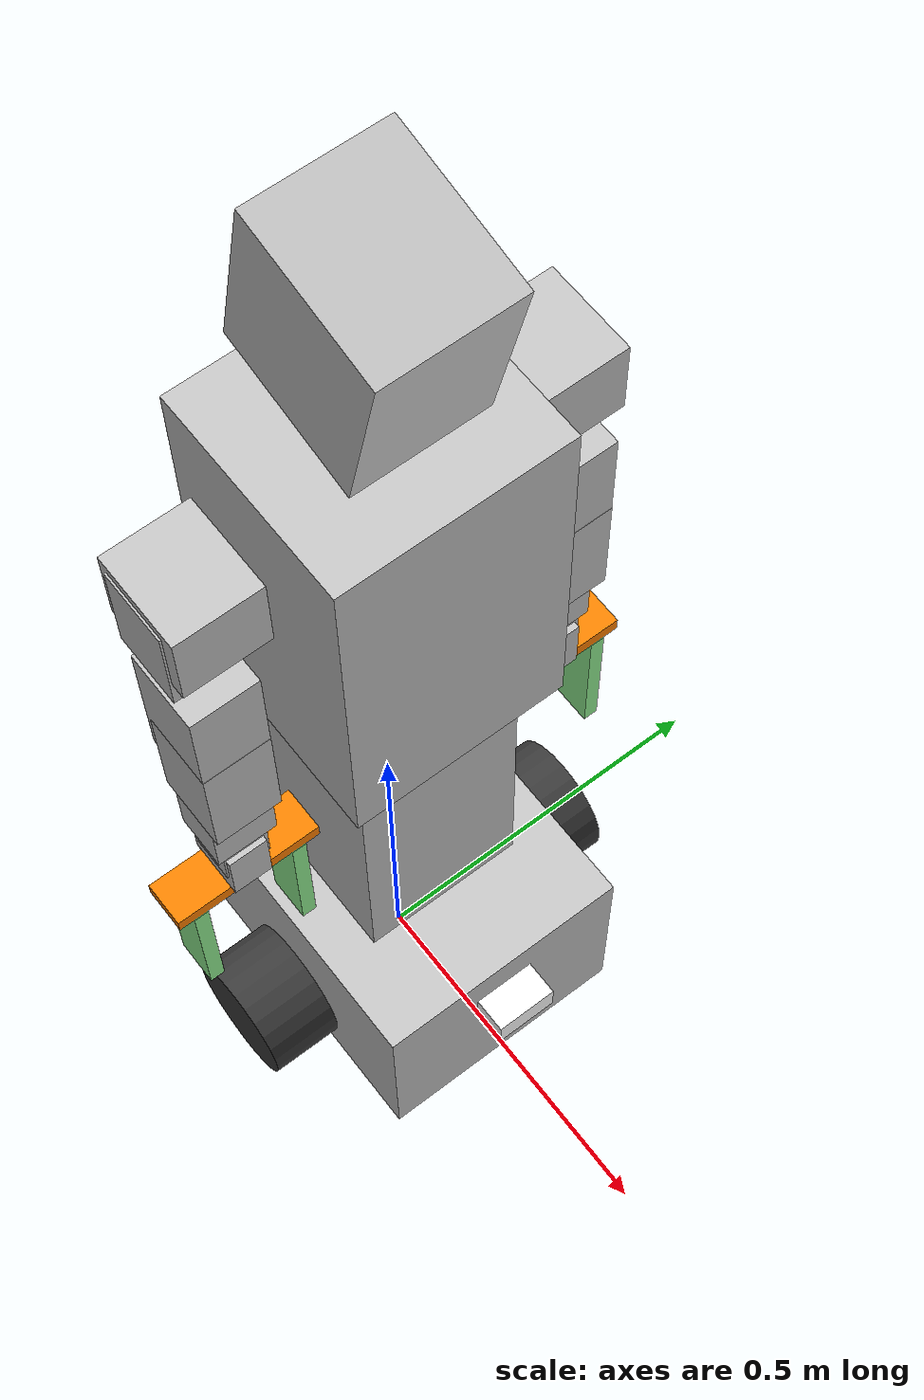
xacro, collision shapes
<?xml version="1.0"?>
<robot xmlns:xacro="http://www.ros.org/wiki/xacro" name="zhishu_robot">
    <xacro:arg name="initial_positions_file" default="initial_positions.yaml" />
    <xacro:arg name="use_gazebo" default="false" />
    <xacro:arg name="use_fake_hardware" default="true" />
    <xacro:arg name="left_arm_use_fake_hardware" default="$(arg use_fake_hardware)" />
    <xacro:arg name="right_arm_use_fake_hardware" default="$(arg use_fake_hardware)" />
    <xacro:arg name="torso_head_use_fake_hardware" default="$(arg use_fake_hardware)" />
    <xacro:arg name="enable_left_arm_hardware" default="true" />
    <xacro:arg name="enable_right_arm_hardware" default="true" />
    <xacro:arg name="enable_torso_head_hardware" default="false" />
    <xacro:arg name="enable_motors_on_activate" default="true" />
    <xacro:arg name="torso_head_enable_motors_on_activate" default="false" />
    <xacro:arg name="pdo_diagnostics_auto_start" default="true" />
    <xacro:arg name="use_head_camera" default="false" />
    <xacro:arg name="hide_head_pitch_visual" default="false" />
    <xacro:arg name="handeye_target_enabled" default="false" />
    <xacro:arg name="bottle_grasp_sim_enabled" default="false" />
    <xacro:arg name="mobile_base_sim_enabled" default="false" />
    <!-- Simulation-only TCP pivot tool. False by default: never affects hardware bringup. -->
    <xacro:arg name="tcp_calibration_enabled" default="false" />
    <xacro:arg name="tcp_calibration_tool" default="probe" />
    <xacro:arg name="tcp_calibration_arm" default="both" />

    <!-- Import zhishu_robot urdf file -->
    <xacro:include filename="$(find zhishu_robot_description)/urdf/zhishu_robot.urdf.xacro" />

    <xacro:if value="$(arg tcp_calibration_enabled)">
        <!-- A world-fixed fixture requires a world-fixed robot base. Keep this
             anchor confined to TCP calibration simulation. -->
        <link name="world"/>
        <joint name="tcp_calibration_world_anchor" type="fixed">
            <parent link="world"/>
            <child link="base_footprint"/>
            <origin xyz="0 0 0" rpy="0 0 0"/>
        </joint>
        <xacro:include filename="$(find zhishu_robot_tcp_calibration)/urdf/tcp_probe.xacro" />
        <xacro:tcp_calibration_probes tool="$(arg tcp_calibration_tool)" arm="$(arg tcp_calibration_arm)" />
    </xacro:if>

    <!-- Import control_xacro -->
    <xacro:include filename="zhishu_robot.left_arm.ros2_control.xacro" />
    <xacro:include filename="zhishu_robot.right_arm.ros2_control.xacro" />
    <xacro:include filename="zhishu_robot.torso_head.ros2_control.xacro" />
    <xacro:include filename="zhishu_robot.gazebo.ros2_control.xacro" />

    <xacro:unless value="$(arg use_gazebo)">
        <xacro:if value="$(arg enable_left_arm_hardware)">
            <xacro:if value="$(arg enable_torso_head_hardware)">
                <xacro:zhishu_robot_left_arm_ros2_control
                    name="LeftArmSystem"
                    initial_positions_file="$(arg initial_positions_file)"
                    use_fake_hardware="$(arg left_arm_use_fake_hardware)"
                    enable_motors_on_activate="$(arg enable_motors_on_activate)"
                    pdo_diagnostics_auto_start="$(arg pdo_diagnostics_auto_start)"
                    include_torso_head_state_joints="false"
                    include_torso_head_ethercat_joints="true"/>
            </xacro:if>
            <xacro:unless value="$(arg enable_torso_head_hardware)">
                <xacro:zhishu_robot_left_arm_ros2_control
                    name="LeftArmSystem"
                    initial_positions_file="$(arg initial_positions_file)"
                    use_fake_hardware="$(arg left_arm_use_fake_hardware)"
                    enable_motors_on_activate="$(arg enable_motors_on_activate)"
                    pdo_diagnostics_auto_start="$(arg pdo_diagnostics_auto_start)"
                    include_torso_head_state_joints="true"
                    include_torso_head_ethercat_joints="false"/>
            </xacro:unless>
        </xacro:if>

        <xacro:if value="$(arg enable_right_arm_hardware)">
            <xacro:zhishu_robot_right_arm_ros2_control
                name="RightArmSystem"
                initial_positions_file="$(arg initial_positions_file)"
                use_fake_hardware="$(arg right_arm_use_fake_hardware)"
                enable_motors_on_activate="$(arg enable_motors_on_activate)"
                pdo_diagnostics_auto_start="$(arg pdo_diagnostics_auto_start)"/>
        </xacro:if>

        <xacro:if value="$(arg enable_torso_head_hardware)">
            <xacro:unless value="$(arg enable_left_arm_hardware)">
                <xacro:zhishu_robot_torso_head_ros2_control
                    name="TorsoHeadSystem"
                    initial_positions_file="$(arg initial_positions_file)"
                    use_fake_hardware="$(arg torso_head_use_fake_hardware)"
                    enable_motors_on_activate="$(arg torso_head_enable_motors_on_activate)"
                    pdo_diagnostics_auto_start="$(arg pdo_diagnostics_auto_start)"/>
            </xacro:unless>
        </xacro:if>
    </xacro:unless>

    <xacro:if value="$(arg use_gazebo)">
        <xacro:zhishu_robot_gazebo_ros2_control
            name="GazeboSystem"
            initial_positions_file="$(arg initial_positions_file)"/>
        <gazebo>
            <plugin filename="libgz_ros2_control-system.so" name="gz_ros2_control::GazeboSimROS2ControlPlugin">
                <parameters>$(find zhishu_robot_moveit_config)/config/ros2_controllers.yaml</parameters>
                <parameters>$(find zhishu_robot_moveit_config)/config/gazebo_controller_manager.yaml</parameters>
                <!-- Hold all joints at their configured initial positions while
                     the admittance launch loads and atomically activates controllers. -->
                <hold_joints>true</hold_joints>
                <!-- gz_ros2_control scales position error by update_rate;
                     a sub-unit gain damps discrete contact tracking. -->
                <position_proportional_gain>0.2</position_proportional_gain>
            </plugin>
            <xacro:if value="$(arg mobile_base_sim_enabled)">
                <plugin filename="gz-sim-pose-publisher-system" name="gz::sim::systems::PosePublisher">
                    <publish_model_pose>true</publish_model_pose>
                    <publish_link_pose>false</publish_link_pose>
                    <use_pose_vector_msg>false</use_pose_vector_msg>
                    <update_frequency>20</update_frequency>
                </plugin>
                <!-- Simulation-only mobile base. The wheel joints are state-only in
                     gz_ros2_control, so DiffDrive is the sole wheel command writer. -->
                <plugin filename="gz-sim-diff-drive-system" name="gz::sim::systems::DiffDrive">
                    <left_joint>left_wheel_joint</left_joint>
                    <right_joint>right_wheel_joint</right_joint>
                    <wheel_separation>0.35</wheel_separation>
                    <wheel_radius>0.0858</wheel_radius>
                    <topic>/cmd_vel</topic>
                    <odom_topic>/odom</odom_topic>
                    <tf_topic>/tf</tf_topic>
                    <frame_id>odom</frame_id>
                    <child_frame_id>base_footprint</child_frame_id>
                    <odom_publish_frequency>50</odom_publish_frequency>
                </plugin>
            </xacro:if>
            <xacro:if value="$(arg bottle_grasp_sim_enabled)">
                <!-- Contact determines closure timing; this simulation-only
                     joint prevents numerical slip during the lift. -->
                <plugin filename="gz-sim-detachable-joint-system"
                        name="gz::sim::systems::DetachableJoint">
                    <parent_link>gripper_base_link</parent_link>
                    <child_model>bottle</child_model>
                    <child_link>bottle_link</child_link>
                    <detach_topic>/bottle_grasp/detach</detach_topic>
                    <attach_topic>/bottle_grasp/attach</attach_topic>
                    <output_topic>/bottle_grasp/attached</output_topic>
                </plugin>
            </xacro:if>
        </gazebo>
        <xacro:if value="$(arg mobile_base_sim_enabled)">
            <gazebo reference="left_wheel_link"><mu1>8.0</mu1><mu2>8.0</mu2><kp>1000000.0</kp><kd>100.0</kd></gazebo>
            <gazebo reference="right_wheel_link"><mu1>8.0</mu1><mu2>8.0</mu2><kp>1000000.0</kp><kd>100.0</kd></gazebo>
            <!-- Candidate rubber pads: still require physical calibration. -->
            <gazebo reference="gripper_left_finger_link"><mu1>3.0</mu1><mu2>3.0</mu2></gazebo>
            <gazebo reference="gripper_right_finger_link"><mu1>3.0</mu1><mu2>3.0</mu2></gazebo>
            <gazebo reference="left_gripper_left_finger_link"><mu1>3.0</mu1><mu2>3.0</mu2></gazebo>
            <gazebo reference="left_gripper_right_finger_link"><mu1>3.0</mu1><mu2>3.0</mu2></gazebo>
            <xacro:macro name="pallet_contact_sensor" params="link">
                <gazebo reference="${link}">
                    <sensor name="${link}_contact" type="contact">
                        <always_on>true</always_on><update_rate>50</update_rate>
                        <topic>/pallet_contacts/${link}</topic>
                        <contact><collision>${link}_collision</collision></contact>
                    </sensor>
                </gazebo>
            </xacro:macro>
            <xacro:pallet_contact_sensor link="right_shoulder_pitch_link"/>
            <xacro:pallet_contact_sensor link="right_elbow_pitch_link"/>
            <xacro:pallet_contact_sensor link="gripper_left_finger_link"/>
            <xacro:pallet_contact_sensor link="gripper_right_finger_link"/>
        </xacro:if>
    </xacro:if>
</robot>

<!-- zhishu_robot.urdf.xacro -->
<robot name="zhishu_robot" xmlns:xacro="http://www.ros.org/wiki/xacro">

    <xacro:arg name="use_head_camera" default="false"/>
    <xacro:arg name="hide_head_pitch_visual" default="false"/>
    <xacro:arg name="handeye_target_enabled" default="false"/>

    <xacro:include filename="$(find zhishu_robot_description)/urdf/common_properties.xacro"/>
    <xacro:include filename="$(find zhishu_robot_description)/urdf/gripper.xacro"/>
    <xacro:include filename="$(find zhishu_robot_description)/urdf/zhishu_robot_description_dh.urdf"/>
    <xacro:include filename="$(find zhishu_robot_description)/urdf/head_camera_handeye.xacro"/>

    <xacro:head_camera_sensor enabled="$(arg use_head_camera)"/>

    <!-- Preserve the wrist-to-hand fixed joints in Gazebo so their reaction
         wrench can be measured by simulated six-axis force/torque sensors. -->
    <gazebo reference="L_hand_joint">
        <preserveFixedJoint>true</preserveFixedJoint>
        <sensor name="left_wrist_ft" type="force_torque">
            <always_on>true</always_on>
            <update_rate>250</update_rate>
            <topic>/left_wrist_ft</topic>
            <force_torque>
                <frame>child</frame>
                <measure_direction>child_to_parent</measure_direction>
            </force_torque>
        </sensor>
    </gazebo>

    <gazebo reference="R_hand_joint">
        <preserveFixedJoint>true</preserveFixedJoint>
        <sensor name="right_wrist_ft" type="force_torque">
            <always_on>true</always_on>
            <update_rate>250</update_rate>
            <topic>/right_wrist_ft</topic>
            <force_torque>
                <frame>child</frame>
                <measure_direction>child_to_parent</measure_direction>
            </force_torque>
        </sensor>
    </gazebo>

    <joint name="left_gripper_joint" type="fixed">
        <parent link="L_hand_link" />
        <child link="left_gripper_base_link" />
        <origin xyz="0 0 0" rpy="0 3.14159 1.570796327" />
    </joint>

    <joint name="right_gripper_joint" type="fixed">
        <parent link="R_hand_link" />
        <child link="gripper_base_link" />
        <origin xyz="0 0 0" rpy="0 3.14159 -1.570796327" />
    </joint>

    <xacro:left_handeye_target enabled="$(arg handeye_target_enabled)"/>

</robot>

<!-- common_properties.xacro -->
<robot xmlns:xacro="http://www.ros.org/wiki/xacro">
    <material name="green">
        <color rgba="0 0.5 0 1.0" />
    </material>

    <material name="grey">
        <color rgba="0.5 0.5 0.5 1.0" />
    </material>

    <material name="yellow">
        <color rgba="1.0 1.0 0.0 1.0"/>
    </material>

    <material name="orange">
        <color rgba="1.0 0.5 0.0 1.0"/>
    </material>

    <material name="dark_green">
        <color rgba="1.0 0.5 0.0 1.0"/>
    </material>

    <material name="light_green">
        <color rgba="0.56 0.93 0.56 1.0"/>
    </material>

    <xacro:macro name="box_inertia" params="m x y z o_xyz o_rpy">
        <inertial>
            <mass value="${m}" />
                <origin xyz="${o_xyz}" rpy="${o_rpy}" />
            <inertia ixx="${(m/12) * (y*y + z*z)}" ixy="0" ixz="0"
                     iyy="${(m/12) * (x*x + z*z)}" iyz="0"
                     izz="${(m/12) * (x*x + y*y)}" >
            </inertia>
        </inertial>
    </xacro:macro>

    <xacro:macro name="cylinder_inertia" params="m r l o_xyz o_rpy">
        <inertial>
            <mass value="${m}" />
            <origin xyz="${o_xyz}" rpy="${o_rpy}" />
            <inertia ixx="${(m/12) * (3*r*r + l*l)}" ixy="0" ixz="0"
                     iyy="${(m/12) * (3*r*r + l*l)}" iyz="0"
                     izz="${(m/2) * (r*r)}" />
        </inertial>
    </xacro:macro>

    <xacro:macro name="sphere_inertia" params="m r o_xyz o_rpy">
        <inertial>
            <mass value="${m}" />
            <origin xyz="${o_xyz}" rpy="${o_rpy}" />
            <inertia ixx="${(2/5) * m * r * r}" ixy="0" ixz="0"
                     iyy="${(2/5) * m * r * r}" iyz="0"
                     izz="${(2/5) * m * r * r}" />
        </inertial>
    </xacro:macro>
</robot>

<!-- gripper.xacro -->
<robot xmlns:xacro="http://www.ros.org/wiki/xacro">
    <xacro:arg name="tote_finger_length" default="0.200"/>
    <xacro:property name="tote_finger_length" value="${float('$(arg tote_finger_length)')}"/>

    <xacro:macro name="gripper_finger_inertial">
        <inertial>
            <!-- Configurable fingers; TCP is 80 mm behind the tip.
                 The tote grasp target limits insertion to about 50 mm. -->
            <origin xyz="0 0 ${tote_finger_length / 2}" rpy="0 0 0"/>
            <mass value="0.1"/>
            <inertia
                ixx="${0.1 * (0.06**2 + tote_finger_length**2) / 12}" ixy="0.0" ixz="0.0"
                iyy="${0.1 * (0.02**2 + tote_finger_length**2) / 12}" iyz="0.0"
                izz="0.000036667"/>
        </inertial>
    </xacro:macro>

    <link name="gripper_base_link">
        <visual>
            <geometry>
                <box size="0.2 0.06 0.02"/>
            </geometry>
            <origin xyz="0 0 0.01" rpy="0 0 0"/>
            <material name="dark_green"/>
        </visual>
        <collision>
            <geometry>
                <box size="0.2 0.06 0.02"/>
            </geometry>
            <origin xyz="0 0 0.008" rpy="0 0 0"/>
        </collision>
    </link>

    <link name="gripper_left_finger_link">
        <xacro:gripper_finger_inertial/>
        <visual>
            <geometry>
                <box size="0.02 0.06 ${tote_finger_length}"/>
            </geometry>
            <origin xyz="0 0 ${tote_finger_length / 2}" rpy="0 0 0"/>
            <material name="light_green"/>
        </visual>
        <collision>
            <geometry>
                <box size="0.02 0.06 ${tote_finger_length}"/>
            </geometry>
            <origin xyz="0 0 ${tote_finger_length / 2}" rpy="0 0 0"/>
        </collision>
    </link>

    <link name="gripper_right_finger_link">
        <xacro:gripper_finger_inertial/>
        <visual>
            <geometry>
                <box size="0.02 0.06 ${tote_finger_length}"/>
            </geometry>
            <origin xyz="0 0 ${tote_finger_length / 2}" rpy="0 0 0"/>
            <material name="light_green"/>
        </visual>
        <collision>
            <geometry>
                <box size="0.02 0.06 ${tote_finger_length}"/>
            </geometry>
            <origin xyz="0 0 ${tote_finger_length / 2}" rpy="0 0 0"/>
        </collision>
        <!-- No auxiliary crossbar/pad: the two long fingers clamp the
             continuous tote wall directly.  The former 60x120x20 mm pad
             could overlap the mobile-base shell at the 20 cm dock. -->
    </link>

    <joint name="gripper_left_finger_joint" type="prismatic">
        <parent link="gripper_base_link"/>
        <child link="gripper_left_finger_link"/>
        <origin xyz="-0.07 0 0.02" rpy="0 0 0"/>
        <axis xyz="1 0 0"/>
        <!-- Allow a small state-estimation/controller settling margin around
             the physical 60 mm stroke; the close command still targets the
             real 0..60 mm range. -->
        <limit effort="1000.0" velocity="1.0" lower="-0.01" upper="0.07"/>
    </joint>

    <joint name="gripper_right_finger_joint" type="prismatic">
        <parent link="gripper_base_link"/>
        <child link="gripper_right_finger_link"/>
        <origin xyz="0.07 0 0.02" rpy="0 0 0"/>
        <axis xyz="1 0 0"/>
        <mimic joint="gripper_left_finger_joint" multiplier="-1.0"/>
        <limit effort="1000.0" velocity="1.0" lower="-0.07" upper="0.01"/>
    </joint>

    <link name="right_gripper_tcp"/>
    <link name="right_gripper_push_tip"/>
    <joint name="right_gripper_push_tip_joint" type="fixed">
        <parent link="gripper_base_link"/>
        <child link="right_gripper_push_tip"/>
        <origin xyz="0 0 ${tote_finger_length + 0.020}" rpy="1.5708 0 0"/>
    </joint>

    <joint name="right_gripper_tcp_joint" type="fixed">
        <parent link="gripper_base_link"/>
        <child link="right_gripper_tcp"/>
        <origin xyz="0 0 ${tote_finger_length - 0.060}" rpy="1.5708 0 0"/>
    </joint>
    <!-- Left gripper: same geometry and kinematics as the right gripper, but with left_* names. -->
    <link name="left_gripper_base_link">
        <xacro:unless value="$(arg handeye_target_enabled)">
            <visual>
                <geometry>
                    <box size="0.2 0.06 0.02"/>
                </geometry>
                <origin xyz="0 0 0.01" rpy="0 0 0"/>
                <material name="dark_green"/>
            </visual>
            <collision>
                <geometry>
                    <box size="0.2 0.06 0.02"/>
                </geometry>
                <origin xyz="0 0 0.008" rpy="0 0 0"/>
            </collision>
        </xacro:unless>
    </link>

    <link name="left_gripper_left_finger_link">
        <xacro:gripper_finger_inertial/>
        <xacro:unless value="$(arg handeye_target_enabled)">
            <visual>
                <geometry>
                    <box size="0.02 0.06 ${tote_finger_length}"/>
                </geometry>
                <origin xyz="0 0 ${tote_finger_length / 2}" rpy="0 0 0"/>
                <material name="light_green"/>
            </visual>
            <collision>
                <geometry>
                    <box size="0.02 0.06 ${tote_finger_length}"/>
                </geometry>
                <origin xyz="0 0 ${tote_finger_length / 2}" rpy="0 0 0"/>
            </collision>
        </xacro:unless>
    </link>

    <link name="left_gripper_right_finger_link">
        <xacro:gripper_finger_inertial/>
        <xacro:unless value="$(arg handeye_target_enabled)">
            <visual>
                <geometry>
                    <box size="0.02 0.06 ${tote_finger_length}"/>
                </geometry>
                <origin xyz="0 0 ${tote_finger_length / 2}" rpy="0 0 0"/>
                <material name="light_green"/>
            </visual>
            <collision>
                <geometry>
                    <box size="0.02 0.06 ${tote_finger_length}"/>
                </geometry>
                <origin xyz="0 0 ${tote_finger_length / 2}" rpy="0 0 0"/>
            </collision>
        </xacro:unless>
    </link>

    <joint name="left_gripper_left_finger_joint" type="prismatic">
        <parent link="left_gripper_base_link"/>
        <child link="left_gripper_left_finger_link"/>
        <origin xyz="-0.07 0 0.02" rpy="0 0 0"/>
        <axis xyz="1 0 0"/>
        <limit effort="1000.0" velocity="1.0" lower="-0.01" upper="0.07"/>
    </joint>

    <joint name="left_gripper_right_finger_joint" type="prismatic">
        <parent link="left_gripper_base_link"/>
        <child link="left_gripper_right_finger_link"/>
        <origin xyz="0.07 0 0.02" rpy="0 0 0"/>
        <axis xyz="1 0 0"/>
        <mimic joint="left_gripper_left_finger_joint" multiplier="-1.0"/>
        <limit effort="1000.0" velocity="1.0" lower="-0.07" upper="0.01"/>
    </joint>

    <link name="left_gripper_tcp"/>
    <joint name="left_gripper_tcp_joint" type="fixed">
        <parent link="left_gripper_base_link"/>
        <child link="left_gripper_tcp"/>
        <origin xyz="0 0 ${tote_finger_length - 0.060}" rpy="1.5708 0 0"/>
    </joint>
</robot>

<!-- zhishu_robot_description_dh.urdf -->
<robot name="zhishu_robot_description" xmlns:xacro="http://www.ros.org/wiki/xacro">
  <xacro:arg name="mobile_base_sim_enabled" default="false"/>
  <xacro:arg name="waist_pitch_min" default="-1.57079632679"/>
  <xacro:arg name="mobile_base_sim_mass" default="11.9793854739169"/>
  <xacro:arg name="mobile_base_sim_waist_effort" default="250.0"/>
  <xacro:property name="chassis_mass_scale" value="${float('$(arg mobile_base_sim_mass)') / 11.9793854739169 if '$(arg mobile_base_sim_enabled)' == 'true' else 1.0}"/>
  <link name="base_footprint"/>
  <joint name="base_footprint_joint" type="fixed">
    <origin xyz="0 0 0" rpy="0 0 0"/>
    <parent link="base_footprint"/>
    <child link="base_link"/>
  </joint>
  <link name="base_link">
    <inertial>
      <origin xyz="0.0105840663604119 -2.11178960268536E-05 0.171968380691249" rpy="0 0 0"/>
      <mass value="${11.9793854739169 * chassis_mass_scale}"/>
      <inertia ixx="${0.267920451400325 * chassis_mass_scale}" ixy="${-0.000314932674231556 * chassis_mass_scale}" ixz="${0.0034331217858401 * chassis_mass_scale}" iyy="${0.200761728773841 * chassis_mass_scale}" iyz="${-5.74641985699417E-05 * chassis_mass_scale}" izz="${0.319752835778639 * chassis_mass_scale}"/>
    </inertial>
    <visual>
      <origin xyz="0 0 0" rpy="0 0 0"/>
      <geometry>
        <mesh filename="package://zhishu_robot_description/meshes/base_link.STL"/>
      </geometry>
      <material name="base_link_material_0">
        <color rgba="0.752941176470588 0.752941176470588 0.752941176470588 1"/>
      </material>
    </visual>
    <collision>
      <origin xyz="0.009 0 0.150" rpy="0 0 0"/>
      <geometry>
        <box size="0.450 0.350 0.300"/>
      </geometry>
    </collision>
  </link>
  <xacro:macro name="sim_support_ball" params="name x y">
    <link name="${name}">
      <inertial>
        <mass value="0.05"/>
        <inertia ixx="0.000032" ixy="0" ixz="0" iyy="0.000032" iyz="0" izz="0.000032"/>
      </inertial>
      <visual><geometry><sphere radius="0.04"/></geometry></visual>
      <collision><geometry><sphere radius="0.04"/></geometry></collision>
    </link>
    <joint name="${name}_mount" type="fixed">
      <parent link="base_link"/><child link="${name}"/>
      <!-- Wheel lowest point is -3.3 mm: supports at -3.0 mm must not
           suspend the driven wheels in the nominal level posture. -->
      <origin xyz="${x} ${y} 0.037"/>
    </joint>
    <gazebo reference="${name}">
      <mu1>0.02</mu1><mu2>0.02</mu2>
    </gazebo>
  </xacro:macro>
  <xacro:if value="$(arg mobile_base_sim_enabled)">
    <xacro:sim_support_ball name="sim_front_left_support" x="0.185" y="0.130"/>
    <xacro:sim_support_ball name="sim_front_right_support" x="0.185" y="-0.130"/>
    <xacro:sim_support_ball name="sim_rear_left_support" x="-0.165" y="0.130"/>
    <xacro:sim_support_ball name="sim_rear_right_support" x="-0.165" y="-0.130"/>
  </xacro:if>
  <link name="waist_up_down_link">
    <inertial>
      <origin xyz="0.0014882 0.00079476 0.29807" rpy="0 0 0"/>
      <mass value="1.6979"/>
      <inertia ixx="0.027359" ixy="1.5758E-06" ixz="6.6657E-05" iyy="0.022449" iyz="0.00010637" izz="0.0092156"/>
    </inertial>
    <visual>
      <origin xyz="0 0 0" rpy="0 0 0"/>
      <geometry>
        <mesh filename="package://zhishu_robot_description/meshes/waist_up_down_link.STL"/>
      </geometry>
      <material name="waist_up_down_link_material_0">
        <color rgba="0.75294 0.75294 0.75294 1"/>
      </material>
    </visual>
    <collision>
      <!-- Tight planning proxy: keep the lift column floor-to-top envelope while
           leaving clearance for the arms at the -90 deg waist-pitch limit. -->
      <origin xyz="-0.000002 0 0.250000" rpy="0 0 0"/>
      <geometry>
        <box size="0.220 0.220 0.500"/>
      </geometry>
    </collision>
  </link>
  <joint name="waist_up_down_joint" type="prismatic">
    <origin xyz="-0.001 -0.00034236 0.29735" rpy="0 0 0"/>
    <parent link="base_link"/>
    <child link="waist_up_down_link"/>
    <axis xyz="0 0 1"/>
    <limit lower="0" upper="0.3" effort="500.0" velocity="0.2"/>
  </joint>
  <link name="waist_pitch_link">
    <inertial>
      <origin xyz="0.0092634 -1.4003E-05 0.24508" rpy="0 0 0"/>
      <mass value="2.5658"/>
      <inertia ixx="0.038733" ixy="-2.8897E-07" ixz="5.5823E-05" iyy="0.027464" iyz="7.8309E-07" izz="0.020531"/>
    </inertial>
    <visual>
      <origin xyz="0 0 0" rpy="0 0 0"/>
      <geometry>
        <mesh filename="package://zhishu_robot_description/meshes/waist_pitch_link.STL"/>
      </geometry>
      <material name="waist_pitch_link_material_0">
        <color rgba="0.75294 0.75294 0.75294 1"/>
      </material>
    </visual>
    <collision>
      <!-- Reduced torso proxy; the visual mesh and inertial model are unchanged. -->
      <origin xyz="0.015000 -0.000342 0.250000" rpy="0 0 0"/>
      <geometry>
        <box size="0.270 0.280 0.500"/>
      </geometry>
    </collision>
  </link>
  <joint name="waist_pitch_joint" type="revolute">
    <origin xyz="0 0.00034236 0.47265" rpy="0 0 0"/>
    <parent link="waist_up_down_link"/>
    <child link="waist_pitch_link"/>
    <axis xyz="0 -1 0"/>
    <!-- Allow the crouched pickup posture requested by the pallet transfer test. -->
    <limit lower="$(arg waist_pitch_min)" upper="0.2618" effort="${float('$(arg mobile_base_sim_waist_effort)') if '$(arg mobile_base_sim_enabled)' == 'true' else 100.0}" velocity="1.0"/>
  </joint>
  <link name="head_yaw_link">
    <inertial>
      <origin xyz="6.7569E-06 -0.013798 0.027294" rpy="0 0 0"/>
      <mass value="0.025533"/>
      <inertia ixx="2.4487E-05" ixy="-7.9261E-11" ixz="3.9028E-09" iyy="3.0652E-05" iyz="4.9467E-06" izz="1.6691E-05"/>
    </inertial>
    <visual>
      <origin xyz="0 0 0" rpy="0 0 0"/>
      <geometry>
        <mesh filename="package://zhishu_robot_description/meshes/head_yaw_link.STL"/>
      </geometry>
      <material name="head_yaw_link_material_0">
        <color rgba="0.75294 0.75294 0.75294 1"/>
      </material>
    </visual>
    <collision>
      <origin xyz="0 0.0025 0.04343" rpy="0 0 0"/>
      <geometry>
        <box size="0.066173 0.0591 0.095677"/>
      </geometry>
    </collision>
  </link>
  <joint name="head_yaw_joint" type="revolute">
    <origin xyz="0.0011228 0 0.50076" rpy="0 0.22689 0"/>
    <parent link="waist_pitch_link"/>
    <child link="head_yaw_link"/>
    <axis xyz="0 0 1"/>
    <limit lower="-0.5236" upper="0.5236" effort="100.0" velocity="1.0"/>
  </joint>
  <link name="head_pitch_link">
    <inertial>
      <origin xyz="-0.013322 0.019844 0.1149" rpy="0 0 0"/>
      <mass value="0.88122"/>
      <inertia ixx="0.0049898" ixy="-6.7229E-07" ixz="0.0014315" iyy="0.0042558" iyz="1.0938E-06" izz="0.0047652"/>
    </inertial>
    <!-- The calibration-only switch suppresses rendered geometry that can
         occlude the head camera.  The link, inertia, collision and complete
         head kinematic chain remain intact. -->
    <xacro:unless value="$(arg hide_head_pitch_visual)">
      <visual>
        <origin xyz="0 0 0" rpy="0 0 0"/>
        <geometry>
          <mesh filename="package://zhishu_robot_description/meshes/head_pitch_link.STL"/>
        </geometry>
        <material name="head_pitch_link_material_0">
          <color rgba="0.75294 0.75294 0.75294 1"/>
        </material>
      </visual>
    </xacro:unless>
    <collision>
      <origin xyz="-0.012422 0.020658 0.115908" rpy="0 0 0"/>
      <geometry>
        <box size="0.190 0.160 0.230"/>
      </geometry>
    </collision>
  </link>
  <joint name="head_pitch_joint" type="revolute">
    <origin xyz="0 -0.021 0.058" rpy="0 0 0"/>
    <parent link="head_yaw_link"/>
    <child link="head_pitch_link"/>
    <axis xyz="0 -1 0"/>
    <limit lower="-0.349" upper="0.262" effort="100.0" velocity="1.0"/>
  </joint>
  <link name="head_camera_link">
    <inertial>
      <origin xyz="-0.010536 0.00014031 0.0029053" rpy="0 0 0"/>
      <mass value="0.060808"/>
      <inertia ixx="4.1714E-05" ixy="1.6335E-08" ixz="8.6471E-09" iyy="3.5869E-06" iyz="2.6477E-09" izz="3.978E-05"/>
    </inertial>
    <visual>
      <origin xyz="0 0 0" rpy="0 0 0"/>
      <geometry>
        <mesh filename="package://zhishu_robot_description/meshes/head_camera_link.STL"/>
      </geometry>
      <material name="head_camera_link_material_0">
        <color rgba="0.75294 0.75294 0.75294 1"/>
      </material>
    </visual>
    <collision>
      <origin xyz="-0.0234 0 0.016409" rpy="0 0 0"/>
      <geometry>
        <box size="0.050736 0.106486 0.062755"/>
      </geometry>
    </collision>
  </link>
  <joint name="head_camera_joint" type="fixed">
    <origin xyz="0.0775 0.021 0.051533" rpy="0 0 0"/>
    <parent link="head_pitch_link"/>
    <child link="head_camera_link"/>
    <axis xyz="0 0 0"/>
  </joint>
  <link name="head_smart_speaker_link">
    <inertial>
      <origin xyz="-0.00033731 -2.3644E-07 -0.014905" rpy="0 0 0"/>
      <mass value="0.26595"/>
      <inertia ixx="0.00021865" ixy="-7.4563E-10" ixz="3.0442E-08" iyy="0.00021876" iyz="-9.1023E-11" izz="0.00040289"/>
    </inertial>
    <visual>
      <origin xyz="0 0 0" rpy="0 0 0"/>
      <geometry>
        <mesh filename="package://zhishu_robot_description/meshes/head_smart_speaker_link.STL"/>
      </geometry>
      <material name="head_smart_speaker_link_material_0">
        <color rgba="0.75294 0.75294 0.75294 1"/>
      </material>
    </visual>
    <collision>
      <origin xyz="-0.016197 0 -0.01515" rpy="0 0 0"/>
      <geometry>
        <box size="0.148051 0.115608 0.033906"/>
      </geometry>
    </collision>
  </link>
  <joint name="head_smart_speaker_joint" type="fixed">
    <origin xyz="0.000145 0.02108 0.1093" rpy="0 0 0"/>
    <parent link="head_pitch_link"/>
    <child link="head_smart_speaker_link"/>
    <axis xyz="0 0 0"/>
  </joint>
  <link name="left_shoulder_pitch_link">
    <inertial>
      <origin xyz="-0.0045898 -0.00013978 -0.032066" rpy="1.570796327 0 -1.570796327"/>
      <mass value="0.43703"/>
      <inertia ixx="0.00085981" ixy="4.5354e-05" ixz="-5.5928e-06" iyy="0.00095707" iyz="0.00016999" izz="0.00088432"/>
    </inertial>
    <visual>
      <origin xyz="0 0 -0.07" rpy="1.570796327 0 -1.570796327"/>
      <geometry>
        <mesh filename="package://zhishu_robot_description/meshes/left_shoulder_pitch_link.STL"/>
      </geometry>
      <material name="left_shoulder_pitch_link_material_0">
        <color rgba="0.75294 0.75294 0.75294 1"/>
      </material>
    </visual>
    <collision>
      <origin xyz="-0.000075 -0.003 -0.010009" rpy="0 0 0"/>
      <geometry>
        <box size="0.100 0.120 0.105"/>
      </geometry>
    </collision>
  </link>
  <joint name="left_shoulder_pitch_joint" type="revolute">
    <origin xyz="0 0 0" rpy="0 0 0"/>
    <parent link="left_arm_dh_base_link"/>
    <child link="left_shoulder_pitch_link"/>
    <axis xyz="0 0 1"/>
    <limit lower="-3.0543" upper="0.90757" effort="100.0" velocity="1.0"/>
  </joint>
  <link name="left_shoulder_roll_link">
    <inertial>
      <origin xyz="0.0010914 0.025605 -0.000914" rpy="0 -1.570796327 1.570796327"/>
      <mass value="0.47459"/>
      <inertia ixx="0.0012901" ixy="-2.8026e-05" ixz="1.4837e-06" iyy="0.00086041" iyz="4.079e-05" izz="0.0014348"/>
    </inertial>
    <visual>
      <origin xyz="0 0 0.058" rpy="0 -1.570796327 1.570796327"/>
      <geometry>
        <mesh filename="package://zhishu_robot_description/meshes/left_shoulder_roll_link.STL"/>
      </geometry>
      <material name="left_shoulder_roll_link_material_0">
        <color rgba="0.75294 0.75294 0.75294 1"/>
      </material>
    </visual>
    <collision>
      <origin xyz="-0.000006 0.025402 -0.001" rpy="0 0 0"/>
      <geometry>
        <box size="0.090 0.125 0.090"/>
      </geometry>
    </collision>
  </link>
  <joint name="left_shoulder_roll_joint" type="revolute">
    <origin xyz="0 0 0" rpy="0 1.570796327 -1.570796327"/>
    <parent link="left_shoulder_pitch_link"/>
    <child link="left_shoulder_roll_link"/>
    <axis xyz="0 0 -1"/>
    <limit lower="-1.4835" upper="0.43633" effort="100.0" velocity="1.0"/>
  </joint>
  <link name="left_shoulder_yaw_link">
    <inertial>
      <origin xyz="0.008767919759 0.0009495830577 0.06592" rpy="0 0 -0.00023118"/>
      <mass value="0.63884"/>
      <inertia ixx="0.003144601381" ixy="3.011037284e-06" ixz="0.0002282804083" iyy="0.003348498619" iyz="-4.151677497e-05" izz="0.0011017"/>
    </inertial>
    <visual>
      <origin xyz="0 0 0.1785" rpy="0 0 -0.00023118"/>
      <geometry>
        <mesh filename="package://zhishu_robot_description/meshes/left_shoulder_yaw_link.STL"/>
      </geometry>
      <material name="left_shoulder_yaw_link_material_0">
        <color rgba="0.75294 0.75294 0.75294 1"/>
      </material>
    </visual>
    <collision>
      <origin xyz="0.00952 0.000052 0.065758" rpy="0 0 0"/>
      <geometry>
        <box size="0.100 0.085 0.190"/>
      </geometry>
    </collision>
  </link>
  <joint name="left_shoulder_yaw_joint" type="revolute">
    <origin xyz="0 0.28 0" rpy="-1.570796327 -1.570565147 3.141592654"/>
    <parent link="left_shoulder_roll_link"/>
    <child link="left_shoulder_yaw_link"/>
    <axis xyz="0 0 -1"/>
    <limit lower="-3.0543" upper="3.0543" effort="100.0" velocity="1.0"/>
  </joint>
  <link name="left_elbow_pitch_link">
    <inertial>
      <origin xyz="0.013849 0.05313 -0.001267" rpy="-1.570796327 0 3.141592654"/>
      <mass value="0.39849"/>
      <inertia ixx="0.00088239" ixy="-6.3121e-05" ixz="3.1708e-05" iyy="0.00054057" iyz="0.00012509" izz="0.00090946"/>
    </inertial>
    <visual>
      <origin xyz="0 0 0.037" rpy="-1.570796327 0 3.141592654"/>
      <geometry>
        <mesh filename="package://zhishu_robot_description/meshes/left_elbow_pitch_link.STL"/>
      </geometry>
      <material name="left_elbow_pitch_link_material_0">
        <color rgba="0.75294 0.75294 0.75294 1"/>
      </material>
    </visual>
    <collision>
      <origin xyz="0.007268 0.045772 0" rpy="0 0 0"/>
      <geometry>
        <box size="0.095 0.155 0.085"/>
      </geometry>
    </collision>
  </link>
  <joint name="left_elbow_pitch_joint" type="revolute">
    <origin xyz="0.02000044696 3.753080051e-07 0" rpy="-1.570796327 0 -3.141592654"/>
    <parent link="left_shoulder_yaw_link"/>
    <child link="left_elbow_pitch_link"/>
    <axis xyz="0 0 1"/>
    <limit lower="0" upper="2.5307" effort="100.0" velocity="1.0"/>
  </joint>
  <link name="left_wrist_yaw_link">
    <inertial>
      <origin xyz="-2.6976e-05 -0.0011875 -0.04033" rpy="3.141592654 0 3.141592654"/>
      <mass value="0.20757"/>
      <inertia ixx="0.00021935" ixy="-2.7726e-07" ixz="4.2974e-08" iyy="0.00020141" iyz="4.5131e-05" izz="0.00022149"/>
    </inertial>
    <visual>
      <origin xyz="0 0 -0.074" rpy="3.141592654 0 3.141592654"/>
      <geometry>
        <mesh filename="package://zhishu_robot_description/meshes/left_wrist_yaw_link.STL"/>
      </geometry>
      <material name="left_wrist_yaw_link_material_0">
        <color rgba="0.75294 0.75294 0.75294 1"/>
      </material>
    </visual>
    <collision>
      <origin xyz="0.000017 0.00425 -0.0225" rpy="0 0 0"/>
      <geometry>
        <box size="0.070 0.080 0.090"/>
      </geometry>
    </collision>
  </link>
  <joint name="left_wrist_yaw_joint" type="revolute">
    <origin xyz="0.02 0.213 0" rpy="-1.570796327 0.00023118 0"/>
    <parent link="left_elbow_pitch_link"/>
    <child link="left_wrist_yaw_link"/>
    <axis xyz="0 0 1"/>
    <limit lower="-3.0543" upper="3.0543" effort="100.0" velocity="1.0"/>
  </joint>
  <link name="left_wrist_pitch_link">
    <inertial>
      <origin xyz="0.02751 -0.00057849 0.000587" rpy="-1.570796327 0 1.570796327"/>
      <mass value="0.2187"/>
      <inertia ixx="0.00018749" ixy="1.5194e-05" ixz="1.7286e-05" iyy="0.00031253" iyz="-4.843e-06" izz="0.00030811"/>
    </inertial>
    <visual>
      <origin xyz="0 0 0.0365" rpy="-1.570796327 0 1.570796327"/>
      <geometry>
        <mesh filename="package://zhishu_robot_description/meshes/left_wrist_pitch_link.STL"/>
      </geometry>
      <material name="left_wrist_pitch_link_material_0">
        <color rgba="0.75294 0.75294 0.75294 1"/>
      </material>
    </visual>
    <collision>
      <origin xyz="0.027495 0.003321 -0.001467" rpy="0 0 0"/>
      <geometry>
        <box size="0.095 0.060 0.060"/>
      </geometry>
    </collision>
  </link>
  <joint name="left_wrist_pitch_joint" type="revolute">
    <origin xyz="0 0 0" rpy="0 -1.570796327 1.570796327"/>
    <parent link="left_wrist_yaw_link"/>
    <child link="left_wrist_pitch_link"/>
    <axis xyz="0 0 -1"/>
    <limit lower="-1.309" upper="1.309" effort="100.0" velocity="1.0"/>
  </joint>
  <link name="left_wrist_roll_link">
    <inertial>
      <origin xyz="0.024637 -0.00058956 0.001026" rpy="0 1.570796312 -3.141592654"/>
      <mass value="0.12223"/>
      <inertia ixx="7.1406e-05" ixy="1.5702e-06" ixz="2.2035e-05" iyy="0.00010803" iyz="-2.5553e-06" izz="0.00011206"/>
    </inertial>
    <visual>
      <origin xyz="0 0 0.034" rpy="0 1.570796312 -3.141592654"/>
      <geometry>
        <mesh filename="package://zhishu_robot_description/meshes/left_wrist_roll_link.STL"/>
      </geometry>
      <material name="left_wrist_roll_link_material_0">
        <color rgba="0.75294 0.75294 0.75294 1"/>
      </material>
    </visual>
    <collision>
      <origin xyz="0.014509 0 -0.003" rpy="0 0 0"/>
      <geometry>
        <box size="0.080 0.052 0.078"/>
      </geometry>
    </collision>
  </link>
  <joint name="left_wrist_roll_joint" type="revolute">
    <origin xyz="0.055 0 0" rpy="1.570796327 0 0"/>
    <parent link="left_wrist_pitch_link"/>
    <child link="left_wrist_roll_link"/>
    <axis xyz="0 0 1"/>
    <limit lower="-1.309" upper="1.309" effort="100.0" velocity="1.0"/>
  </joint>
  <link name="L_hand_link">
    <!-- This wrist adapter must remain a physical link in Gazebo so the
         preserved L_hand_joint can expose its reaction wrench. -->
    <inertial>
      <origin xyz="0 0 0" rpy="0 0 0"/>
      <mass value="0.08"/>
      <inertia ixx="0.0001" ixy="0" ixz="0" iyy="0.0001" iyz="0" izz="0.0001"/>
    </inertial>
  </link>
  <joint name="L_hand_joint" type="fixed">
    <origin xyz="0.06 0 0" rpy="0 1.570796312 -3.141592654"/>
    <parent link="left_wrist_roll_link"/>
    <child link="L_hand_link"/>
  </joint>
  <link name="right_shoulder_pitch_link">
    <inertial>
      <origin xyz="0.0039313 0.010837 -0.024955" rpy="-1.570796327 0 -1.570796327"/>
      <mass value="0.56132"/>
      <inertia ixx="0.00092946" ixy="-4.5776e-05" ixz="-2.1835e-06" iyy="0.001091" iyz="0.00016998" izz="0.00095051"/>
    </inertial>
    <visual>
      <origin xyz="0 0 -0.07" rpy="-1.570796327 0 -1.570796327"/>
      <geometry>
        <mesh filename="package://zhishu_robot_description/meshes/right_shoulder_pitch_link.STL"/>
      </geometry>
      <material name="right_shoulder_pitch_link_material_0">
        <color rgba="0.75294 0.75294 0.75294 1"/>
      </material>
    </visual>
    <collision>
      <origin xyz="0.000075 -0.003 -0.010009" rpy="0 0 0"/>
      <geometry>
        <box size="0.100 0.120 0.105"/>
      </geometry>
    </collision>
  </link>
  <joint name="right_shoulder_pitch_joint" type="revolute">
    <origin xyz="0 0 0" rpy="0 0 0"/>
    <parent link="right_arm_dh_base_link"/>
    <child link="right_shoulder_pitch_link"/>
    <axis xyz="0 0 1"/>
    <limit lower="-0.90757" upper="3.0543" effort="100.0" velocity="1.0"/>
  </joint>
  <link name="right_shoulder_roll_link">
    <inertial>
      <origin xyz="-0.0011734 0.018602 -0.001004" rpy="0 -1.570796327 1.570796327"/>
      <mass value="0.43248"/>
      <inertia ixx="0.001262" ixy="2.8051e-05" ixz="-1.6868e-06" iyy="0.00080485" iyz="4.0927e-05" izz="0.0014071"/>
    </inertial>
    <visual>
      <origin xyz="0 0 0.058" rpy="0 -1.570796327 1.570796327"/>
      <geometry>
        <mesh filename="package://zhishu_robot_description/meshes/right_shoulder_roll_link.STL"/>
      </geometry>
      <material name="right_shoulder_roll_link_material_0">
        <color rgba="0.75294 0.75294 0.75294 1"/>
      </material>
    </visual>
    <collision>
      <origin xyz="0.000006 0.024752 -0.001" rpy="0 0 0"/>
      <geometry>
        <box size="0.090 0.125 0.090"/>
      </geometry>
    </collision>
  </link>
  <joint name="right_shoulder_roll_joint" type="revolute">
    <origin xyz="0 0 0" rpy="0 -1.570796327 1.570796327"/>
    <parent link="right_shoulder_pitch_link"/>
    <child link="right_shoulder_roll_link"/>
    <axis xyz="0 0 -1"/>
    <limit lower="-0.43633" upper="1.4835" effort="100.0" velocity="1.0"/>
  </joint>
  <link name="right_shoulder_yaw_link">
    <inertial>
      <origin xyz="0.0087679 0.00094959 0.06592" rpy="0 0 0"/>
      <mass value="0.63884"/>
      <inertia ixx="0.0031446" ixy="3.0111e-06" ixz="0.00022828" iyy="0.0033485" iyz="-4.1517e-05" izz="0.0011017"/>
    </inertial>
    <visual>
      <origin xyz="0 0 0.1785" rpy="0 0 0"/>
      <geometry>
        <mesh filename="package://zhishu_robot_description/meshes/right_shoulder_yaw_link.STL"/>
      </geometry>
      <material name="right_shoulder_yaw_link_material_0">
        <color rgba="0.75294 0.75294 0.75294 1"/>
      </material>
    </visual>
    <collision>
      <origin xyz="0.00952 0.000052 0.065758" rpy="0 0 0"/>
      <geometry>
        <box size="0.100 0.085 0.190"/>
      </geometry>
    </collision>
  </link>
  <joint name="right_shoulder_yaw_joint" type="revolute">
    <origin xyz="0 0.28 0" rpy="0 -1.570796327 1.570796327"/>
    <parent link="right_shoulder_roll_link"/>
    <child link="right_shoulder_yaw_link"/>
    <axis xyz="0 0 -1"/>
    <limit lower="-3.0543" upper="3.0543" effort="100.0" velocity="1.0"/>
  </joint>
  <link name="right_elbow_pitch_link">
    <inertial>
      <origin xyz="0.013849 0.05313 -0.001267" rpy="-1.570796327 0 3.141592654"/>
      <mass value="0.39849"/>
      <inertia ixx="0.00088239" ixy="-6.3121e-05" ixz="3.1708e-05" iyy="0.00054057" iyz="0.00012509" izz="0.00090946"/>
    </inertial>
    <visual>
      <origin xyz="0 0 0.037" rpy="-1.570796327 0 3.141592654"/>
      <geometry>
        <mesh filename="package://zhishu_robot_description/meshes/right_elbow_pitch_link.STL"/>
      </geometry>
      <material name="right_elbow_pitch_link_material_0">
        <color rgba="0.75294 0.75294 0.75294 1"/>
      </material>
    </visual>
    <collision>
      <origin xyz="0.007268 0.045772 0" rpy="0 0 0"/>
      <geometry>
        <box size="0.095 0.155 0.085"/>
      </geometry>
    </collision>
  </link>
  <joint name="right_elbow_pitch_joint" type="revolute">
    <origin xyz="0.02 0 0" rpy="-1.570796327 0 3.141592654"/>
    <parent link="right_shoulder_yaw_link"/>
    <child link="right_elbow_pitch_link"/>
    <axis xyz="0 0 1"/>
    <limit lower="0" upper="2.5307" effort="100.0" velocity="1.0"/>
  </joint>
  <link name="right_wrist_yaw_link">
    <inertial>
      <origin xyz="-2.7844e-05 -0.0011889 -0.040329" rpy="3.141592654 0 3.141592654"/>
      <mass value="0.20758"/>
      <inertia ixx="0.00021936" ixy="-2.8051e-07" ixz="4.6391e-08" iyy="0.00020141" iyz="4.5135e-05" izz="0.0002215"/>
    </inertial>
    <visual>
      <origin xyz="0 0 -0.074" rpy="3.141592654 0 3.141592654"/>
      <geometry>
        <mesh filename="package://zhishu_robot_description/meshes/right_wrist_yaw_link.STL"/>
      </geometry>
      <material name="right_wrist_yaw_link_material_0">
        <color rgba="0.75294 0.75294 0.75294 1"/>
      </material>
    </visual>
    <collision>
      <origin xyz="0.000017 0.00425 -0.0225" rpy="0 0 0"/>
      <geometry>
        <box size="0.070 0.080 0.090"/>
      </geometry>
    </collision>
  </link>
  <joint name="right_wrist_yaw_joint" type="revolute">
    <origin xyz="0.02 0.213 0" rpy="-1.570796327 0 0"/>
    <parent link="right_elbow_pitch_link"/>
    <child link="right_wrist_yaw_link"/>
    <axis xyz="0 0 1"/>
    <limit lower="-3.0543" upper="3.0543" effort="100.0" velocity="1.0"/>
  </joint>
  <link name="right_wrist_pitch_link">
    <inertial>
      <origin xyz="0.02751 -0.00057846 0.000587" rpy="-1.570796327 0 1.570796327"/>
      <mass value="0.2187"/>
      <inertia ixx="0.00018749" ixy="1.5194e-05" ixz="1.7286e-05" iyy="0.00031253" iyz="-4.8431e-06" izz="0.00030811"/>
    </inertial>
    <visual>
      <origin xyz="0 0 0.0365" rpy="-1.570796327 0 1.570796327"/>
      <geometry>
        <mesh filename="package://zhishu_robot_description/meshes/right_wrist_pitch_link.STL"/>
      </geometry>
      <material name="right_wrist_pitch_link_material_0">
        <color rgba="0.75294 0.75294 0.75294 1"/>
      </material>
    </visual>
    <collision>
      <origin xyz="0.027495 0.003321 -0.001467" rpy="0 0 0"/>
      <geometry>
        <box size="0.095 0.060 0.060"/>
      </geometry>
    </collision>
  </link>
  <joint name="right_wrist_pitch_joint" type="revolute">
    <origin xyz="0 0 0" rpy="0 -1.570796327 1.570796327"/>
    <parent link="right_wrist_yaw_link"/>
    <child link="right_wrist_pitch_link"/>
    <axis xyz="0 0 -1"/>
    <limit lower="-1.309" upper="1.309" effort="100.0" velocity="1.0"/>
  </joint>
  <link name="right_wrist_roll_link">
    <inertial>
      <origin xyz="0.024607 0.00059242 0.001253" rpy="0 1.570796327 -3.141592654"/>
      <mass value="0.12162"/>
      <inertia ixx="7.1411e-05" ixy="-1.5674e-06" ixz="2.2038e-05" iyy="0.00010803" iyz="2.561e-06" izz="0.00011205"/>
    </inertial>
    <visual>
      <origin xyz="0 0 0.034" rpy="0 1.570796327 -3.141592654"/>
      <geometry>
        <mesh filename="package://zhishu_robot_description/meshes/right_wrist_roll_link.STL"/>
      </geometry>
      <material name="right_wrist_roll_link_material_0">
        <color rgba="0.75294 0.75294 0.75294 1"/>
      </material>
    </visual>
    <collision>
      <origin xyz="0.014509 0 -0.00125" rpy="0 0 0"/>
      <geometry>
        <box size="0.080 0.052 0.078"/>
      </geometry>
    </collision>
  </link>
  <joint name="right_wrist_roll_joint" type="revolute">
    <origin xyz="0.055 0 0" rpy="1.570796327 0 0"/>
    <parent link="right_wrist_pitch_link"/>
    <child link="right_wrist_roll_link"/>
    <axis xyz="0 0 1"/>
    <limit lower="-1.309" upper="1.309" effort="100.0" velocity="1.0"/>
  </joint>
  <link name="R_hand_link">
    <!-- Mirror of the left wrist adapter; required by the right force sensor. -->
    <inertial>
      <origin xyz="0 0 0" rpy="0 0 0"/>
      <mass value="0.08"/>
      <inertia ixx="0.0001" ixy="0" ixz="0" iyy="0.0001" iyz="0" izz="0.0001"/>
    </inertial>
  </link>
  <joint name="R_hand_joint" type="fixed">
    <origin xyz="0.06 0 0" rpy="0 1.570796327 -3.141592654"/>
    <parent link="right_wrist_roll_link"/>
    <child link="R_hand_link"/>
  </joint>
  <link name="camera_link">
    <inertial>
      <origin xyz="-0.010536 -0.0001403 -0.0029053" rpy="0 0 0"/>
      <mass value="0.060808"/>
      <inertia ixx="4.1714E-05" ixy="-1.6334E-08" ixz="-8.6468E-09" iyy="3.5869E-06" iyz="2.6476E-09" izz="3.978E-05"/>
    </inertial>
    <visual>
      <origin xyz="0 0 0" rpy="0 0 0"/>
      <geometry>
        <mesh filename="package://zhishu_robot_description/meshes/camera_link.STL"/>
      </geometry>
      <material name="camera_link_material_0">
        <color rgba="0.75294 0.75294 0.75294 1"/>
      </material>
    </visual>
    <collision>
      <origin xyz="-0.0234 0 -0.016409" rpy="0 0 0"/>
      <geometry>
        <box size="0.050736 0.106486 0.062755"/>
      </geometry>
    </collision>
  </link>
  <joint name="camera_joint" type="fixed">
    <origin xyz="0.11443 -0.00034219 0.043307" rpy="0 0.5236 0"/>
    <parent link="waist_pitch_link"/>
    <child link="camera_link"/>
    <axis xyz="0 0 0"/>
  </joint>
  <link name="left_wheel_link">
    <inertial>
      <origin xyz="-1.186E-08 0.051302 -9.695E-05" rpy="0 0 0"/>
      <mass value="0.96576"/>
      <inertia ixx="0.0020195" ixy="-5.7359E-10" ixz="-6.1697E-09" iyy="0.0036167" iyz="-7.0516E-08" izz="0.0020194"/>
    </inertial>
    <visual>
      <origin xyz="0 0 0" rpy="0 0 0"/>
      <geometry>
        <mesh filename="package://zhishu_robot_description/meshes/left_wheel_link.STL"/>
      </geometry>
      <material name="left_wheel_link_material_0">
        <color rgba="0.22353 0.22353 0.22353 1"/>
      </material>
    </visual>
    <collision>
      <origin xyz="0 0.03025 0" rpy="1.570796 0 0"/>
      <geometry>
        <cylinder radius="0.0858" length="0.13509"/>
      </geometry>
    </collision>
  </link>
  <joint name="left_wheel_joint" type="continuous">
    <origin xyz="0.015077 0.175 0.0825" rpy="0 0 0"/>
    <parent link="base_link"/>
    <child link="left_wheel_link"/>
    <axis xyz="0 1 0"/>
    <limit lower="0" upper="0" effort="100.0" velocity="10.0"/>
  </joint>
  <link name="right_wheel_link">
    <inertial>
      <origin xyz="1.186E-08 -0.051302 -9.695E-05" rpy="0 0 0"/>
      <mass value="0.96576"/>
      <inertia ixx="0.0020195" ixy="-5.7359E-10" ixz="6.1697E-09" iyy="0.0036167" iyz="7.0516E-08" izz="0.0020194"/>
    </inertial>
    <visual>
      <origin xyz="0 0 0" rpy="0 0 0"/>
      <geometry>
        <mesh filename="package://zhishu_robot_description/meshes/right_wheel_link.STL"/>
      </geometry>
      <material name="right_wheel_link_material_0">
        <color rgba="0.22353 0.22353 0.22353 1"/>
      </material>
    </visual>
    <collision>
      <origin xyz="0 -0.03025 0" rpy="1.570796 0 0"/>
      <geometry>
        <cylinder radius="0.0858" length="0.13509"/>
      </geometry>
    </collision>
  </link>
  <joint name="right_wheel_joint" type="continuous">
    <origin xyz="0.015077 -0.175 0.0825" rpy="0 0 0"/>
    <parent link="base_link"/>
    <child link="right_wheel_link"/>
    <!-- DiffDrive expects equal wheel-axis signs; preserve hardware's
         mirrored encoder convention outside mobile-base simulation. -->
    <xacro:if value="$(arg mobile_base_sim_enabled)">
      <axis xyz="0 1 0"/>
    </xacro:if>
    <xacro:unless value="$(arg mobile_base_sim_enabled)">
      <axis xyz="0 -1 0"/>
    </xacro:unless>
    <limit lower="0" upper="0" effort="100.0" velocity="10.0"/>
  </joint>
  <link name="laser_link">
    <inertial>
      <origin xyz="0 0 0" rpy="0 0 0"/>
      <mass value="0"/>
      <inertia ixx="0" ixy="0" ixz="0" iyy="0" iyz="0" izz="0"/>
    </inertial>
    <visual>
      <origin xyz="0 0 0" rpy="0 0 0"/>
      <geometry>
        <mesh filename="package://zhishu_robot_description/meshes/laser_link.STL"/>
      </geometry>
      <material name="laser_link_material_0">
        <color rgba="1 1 1 1"/>
      </material>
    </visual>
    <collision>
      <origin xyz="0.000342 -0.406555 -0.325257" rpy="0 0 0"/>
      <geometry>
        <box size="0.084213 0.140201 0.042663"/>
      </geometry>
    </collision>
  </link>
  <joint name="laser_joint" type="fixed">
    <origin xyz="-0.194999999998694 -0.000342361741007648 0.54469999999952" rpy="0 0 1.5707963267949"/>
    <parent link="base_link"/>
    <child link="laser_link"/>
    <axis xyz="0 0 0"/>
  </joint>
  <link name="left_arm_dh_base_link"/>
  <link name="right_arm_dh_base_link"/>
  <joint name="left_arm_dh_base_joint" type="fixed">
    <parent link="waist_pitch_link"/>
    <child link="left_arm_dh_base_link"/>
    <origin xyz="0.0068 0.225 0.386" rpy="0 1.570796327 1.570796327"/>
  </joint>
  <joint name="right_arm_dh_base_joint" type="fixed">
    <parent link="waist_pitch_link"/>
    <child link="right_arm_dh_base_link"/>
    <origin xyz="0.0068 -0.225 0.386" rpy="0 -1.570796327 1.570796327"/>
  </joint>
</robot>

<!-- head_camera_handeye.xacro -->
<robot xmlns:xacro="http://www.ros.org/wiki/xacro">
  <xacro:include filename="$(find zhishu_robot_description)/urdf/handeye_target_pattern.xacro"/>
  <xacro:macro name="head_camera_sensor" params="enabled">
    <link name="head_camera_optical_frame"/>
    <xacro:if value="${enabled}">
      <link name="head_camera_sim_mount"/>
      <joint name="head_camera_sim_mount_joint" type="fixed">
        <parent link="base_link"/>
        <child link="head_camera_sim_mount"/>
        <origin xyz="0.62 0 1.75" rpy="0 ${pi / 2} 0"/>
      </joint>
      <joint name="head_camera_optical_joint" type="fixed">
        <parent link="head_camera_sim_mount"/>
        <child link="head_camera_optical_frame"/>
        <origin xyz="0 0 0" rpy="-${pi / 2} 0 -${pi / 2}"/>
      </joint>
    </xacro:if>
    <xacro:unless value="${enabled}">
      <joint name="head_camera_optical_joint" type="fixed">
        <parent link="head_camera_link"/>
        <child link="head_camera_optical_frame"/>
        <origin xyz="0 0 0" rpy="-${pi / 2} 0 -${pi / 2}"/>
      </joint>
    </xacro:unless>

    <link name="head_camera_optical_truth"/>
    <xacro:if value="${enabled}">
      <joint name="head_camera_optical_truth_joint" type="fixed">
        <parent link="head_camera_sim_mount"/>
        <child link="head_camera_optical_truth"/>
        <origin xyz="0 0 0" rpy="-${pi / 2} 0 -${pi / 2}"/>
      </joint>
    </xacro:if>
    <xacro:unless value="${enabled}">
      <joint name="head_camera_optical_truth_joint" type="fixed">
        <parent link="head_camera_link"/>
        <child link="head_camera_optical_truth"/>
        <origin xyz="0 0 0" rpy="-${pi / 2} 0 -${pi / 2}"/>
      </joint>
    </xacro:unless>

    <xacro:if value="${enabled}">
      <gazebo reference="head_camera_sim_mount">
        <sensor name="head_gemini_pro_rgbd" type="rgbd_camera">
          <always_on>true</always_on>
          <update_rate>30</update_rate>
          <visualize>true</visualize>
          <!-- Gazebo appends /image, /depth_image, /points and /camera_info.
               ros_gz_bridge remaps these onto the real Orbbec topic names. -->
          <topic>/camera_head/rgbd</topic>
          <frame_id>head_camera_optical_frame</frame_id>
          <camera name="head_gemini_pro_rgbd">
            <optical_frame_id>head_camera_optical_frame</optical_frame_id>
            <!-- Closely matches the calibrated 640x480 Gemini Pro RGB K. -->
            <horizontal_fov>1.233</horizontal_fov>
            <image>
              <width>640</width>
              <height>480</height>
              <format>R8G8B8</format>
            </image>
            <clip>
              <near>0.05</near>
              <far>5.0</far>
            </clip>
            <noise>
              <type>gaussian</type>
              <mean>0.0</mean>
              <stddev>0.0005</stddev>
            </noise>
            <depth_camera>
              <clip>
                <near>0.10</near>
                <far>4.0</far>
              </clip>
            </depth_camera>
          </camera>
        </sensor>
      </gazebo>
    </xacro:if>
  </xacro:macro>

  <xacro:macro name="left_handeye_target" params="enabled">
    <xacro:if value="${enabled}">
      <link name="handeye_target_truth">
        <inertial>
          <origin xyz="0 0 -0.020" rpy="0 0 0"/>
          <mass value="0.43"/>
          <inertia ixx="0.0037983" ixy="0" ixz="0"
                   iyy="0.0017347" iyz="0" izz="0.0020643"/>
        </inertial>
        <collision>
          <origin xyz="0 0 -0.020" rpy="0 0 0"/>
          <geometry><box size="0.003 0.240 0.220"/></geometry>
        </collision>
        <!-- Generated box geometry is used instead of a texture so the
             detector also works with the headless OGRE renderer. -->
        <xacro:handeye_target_pattern/>

        <visual name="handeye_mount_hole_1">
          <origin xyz="-0.0017 -0.0207 -0.0912" rpy="0 ${pi / 2} 0"/>
          <geometry><cylinder radius="0.00275" length="0.0004"/></geometry>
          <material name="handeye_hole"><color rgba="0.35 0.35 0.35 1"/></material>
        </visual>
        <visual name="handeye_mount_hole_2">
          <origin xyz="-0.0017 -0.0206 -0.1226" rpy="0 ${pi / 2} 0"/>
          <geometry><cylinder radius="0.00275" length="0.0004"/></geometry>
          <material name="handeye_hole"><color rgba="0.35 0.35 0.35 1"/></material>
        </visual>
        <visual name="handeye_mount_hole_3">
          <origin xyz="-0.0017 0.0213 -0.0985" rpy="0 ${pi / 2} 0"/>
          <geometry><cylinder radius="0.00275" length="0.0004"/></geometry>
          <material name="handeye_hole"><color rgba="0.35 0.35 0.35 1"/></material>
        </visual>
        <visual name="handeye_mount_hole_4">
          <origin xyz="-0.0017 0.0214 -0.1152" rpy="0 ${pi / 2} 0"/>
          <geometry><cylinder radius="0.00275" length="0.0004"/></geometry>
          <material name="handeye_hole"><color rgba="0.35 0.35 0.35 1"/></material>
        </visual>
      </link>
      <joint name="handeye_target_mount_joint" type="fixed">
        <parent link="L_hand_link"/>
        <child link="handeye_target_truth"/>
        <origin xyz="0.1069 -0.0004 0.0015" rpy="0 ${pi / 2} 0"/>
      </joint>
    </xacro:if>
  </xacro:macro>
</robot>
